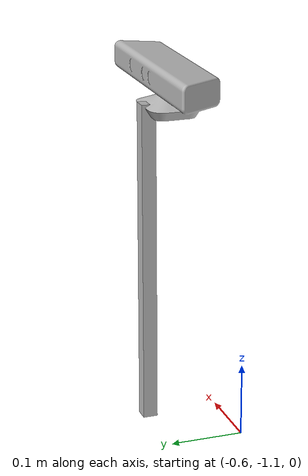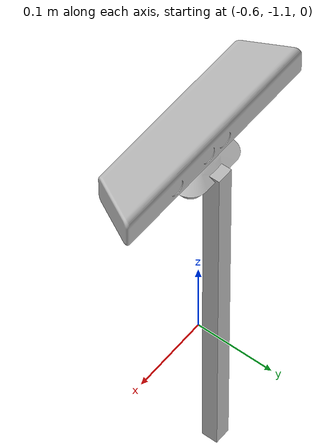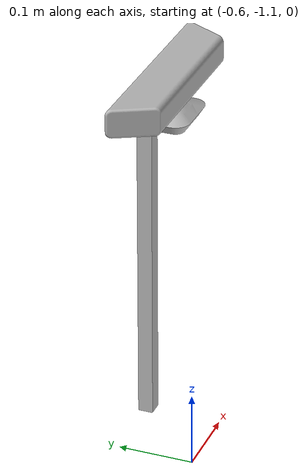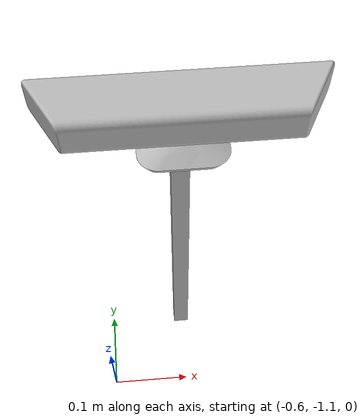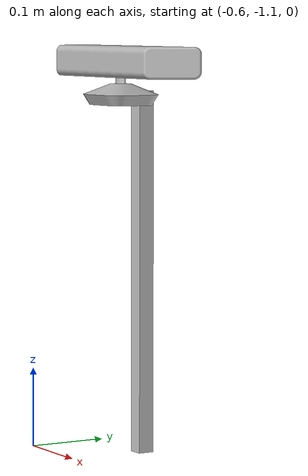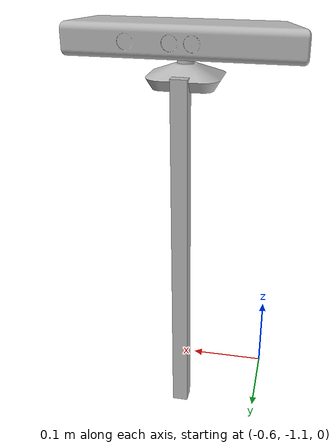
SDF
<?xml version="1.0" ?>
<sdf version="1.5">
  <model name="kinect_ros_with_stand">
    <pose>-0.5 -1.0 0 0 0 1.57</pose>
    <link name="link">
    <pose>0.000000 0.000000 0.486000 0.000000 0.000000 0.000000</pose>
      <inertial>
        <mass>0.1</mass>
      </inertial>
      <collision name="collision">
        <geometry>
          <box>
            <size>0.073000 0.276000 0.072000</size>
          </box>
        </geometry>
      </collision>
      <visual name="visual">
        <geometry>
          <mesh>
            <uri>model://kinect/meshes/kinect.dae</uri>
          </mesh>
        </geometry>
      </visual>
      <sensor name="camera" type="depth">
        <update_rate>20</update_rate>
        <camera>
          <horizontal_fov>1.047198</horizontal_fov>
          <image>
            <width>640</width>
            <height>480</height>
            <format>R8G8B8</format>
          </image>
          <clip>
            <near>0.05</near>
            <far>3</far>
          </clip>
        </camera>
         <plugin name="camera_plugin" filename="libgazebo_ros_openni_kinect.so">
          <baseline>0.2</baseline>
          <alwaysOn>true</alwaysOn>
          <updateRate>0.0</updateRate>
          <cameraName>camera_ir</cameraName>
          <imageTopicName>/camera/color/image_raw</imageTopicName>
          <cameraInfoTopicName>/camera/color/camera_info</cameraInfoTopicName>
          <depthImageTopicName>/camera/depth/image_raw</depthImageTopicName>
          <depthImageCameraInfoTopicName>/camera/depth/camera_info</depthImageCameraInfoTopicName>
          <pointCloudTopicName>/camera/depth/points</pointCloudTopicName>
          <frameName>camera_link</frameName>
          <pointCloudCutoff>0.5</pointCloudCutoff>
          <pointCloudCutoffMax>3.0</pointCloudCutoffMax>
          <distortionK1>0</distortionK1>
          <distortionK2>0</distortionK2>
          <distortionK3>0</distortionK3>
          <distortionT1>0</distortionT1>
          <distortionT2>0</distortionT2>
          <CxPrime>0</CxPrime>
          <Cx>0</Cx>
          <Cy>0</Cy>
          <focalLength>0</focalLength>
          <hackBaseline>0</hackBaseline>
        </plugin>
      </sensor>
    </link>

    <link name="stand">
      <pose>0.000000 0.000000 0.225000 0.000000 0.000000 0.000000</pose>
      <inertial>
        <pose>0.000000 0.000000 0.000000 0.000000 -0.000000 0.000000</pose>
        <mass>10000000</mass>
        <inertia>
          <ixx>10000</ixx>
          <ixy>0.000000</ixy>
          <ixz>0.000000</ixz>
          <iyy>10000</iyy>
          <iyz>0.000000</iyz>
          <izz>10000</izz>
        </inertia>
      </inertial>
      <collision name="wall_collision">
        <pose>0.000000 0.000000 0.000000 0.000000 0.000000 0.000000</pose>
        <geometry>
	  <box>
	    <size> 0.02 0.02 0.45 </size>
	  </box>
        </geometry>
      </collision>
      <visual name="wall_vis">
        <pose>0.000000 0.000000 0.000000 0.000000 0.000000 0.000000</pose>
        <geometry>
          <box>
	    <size> 0.02 0.02 0.45 </size>
	  </box>
        </geometry>
      </visual>
      <velocity_decay />
    </link>

    <joint name="camera_stand" type="fixed">
      <parent>stand</parent>
      <child>link</child>
      <pose>0 0 0.45 0 0 0</pose>
    </joint>

    <joint name="stand_world" type="fixed">
      <parent>world</parent>
      <child>stand</child>
      <pose>0 0 0 0 0 0</pose>
    </joint>

  </model>
</sdf>
